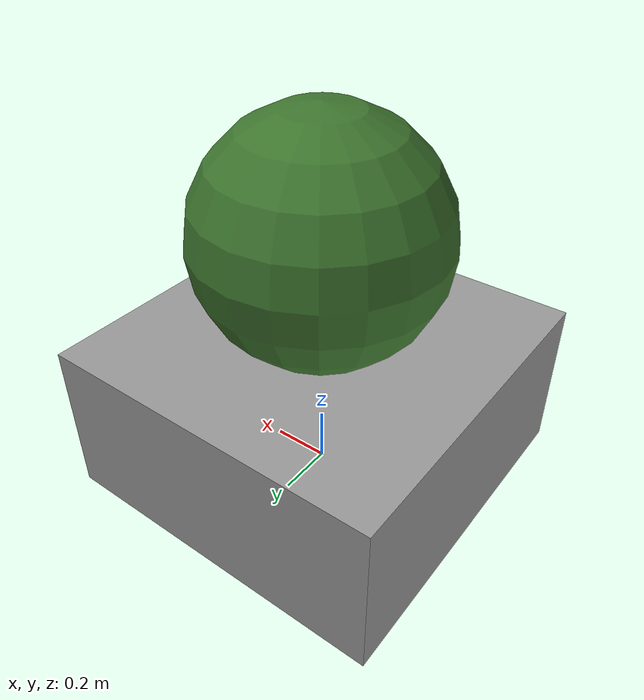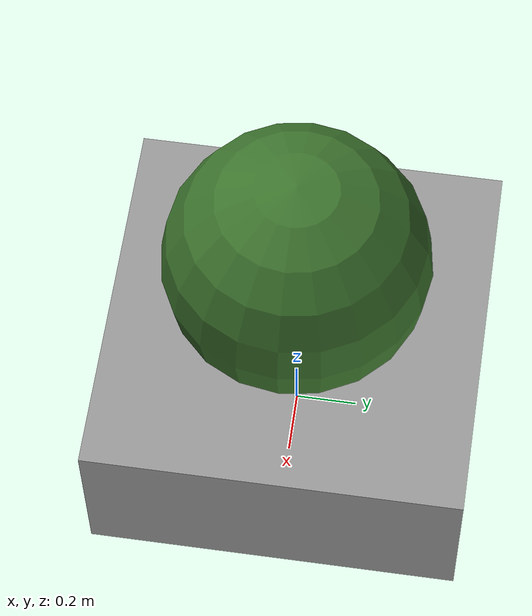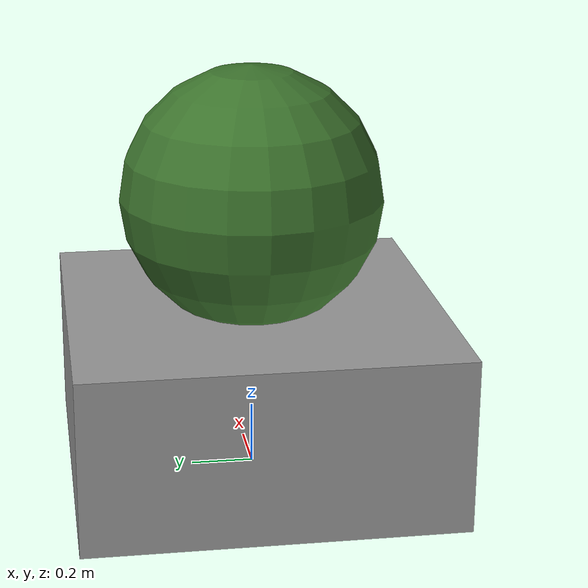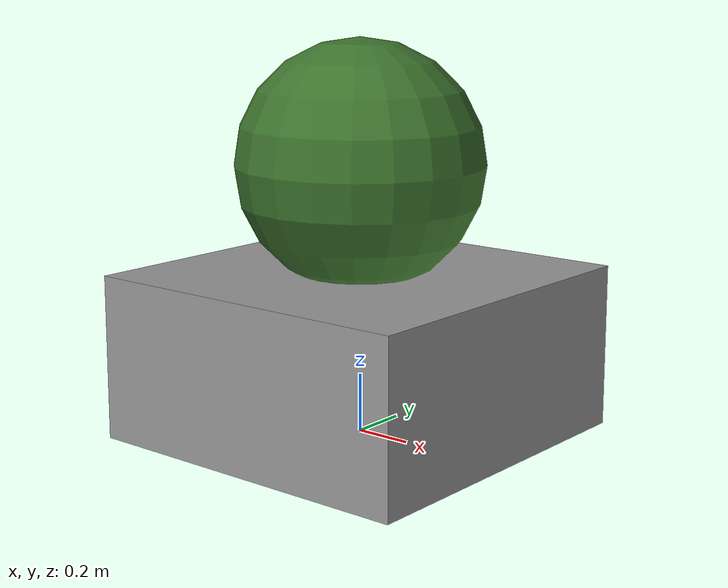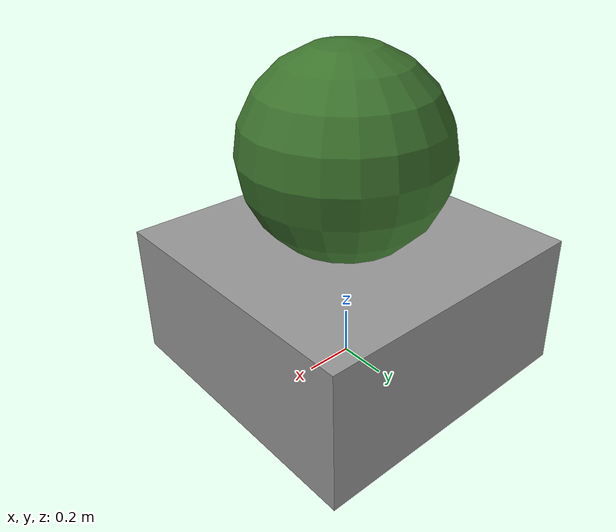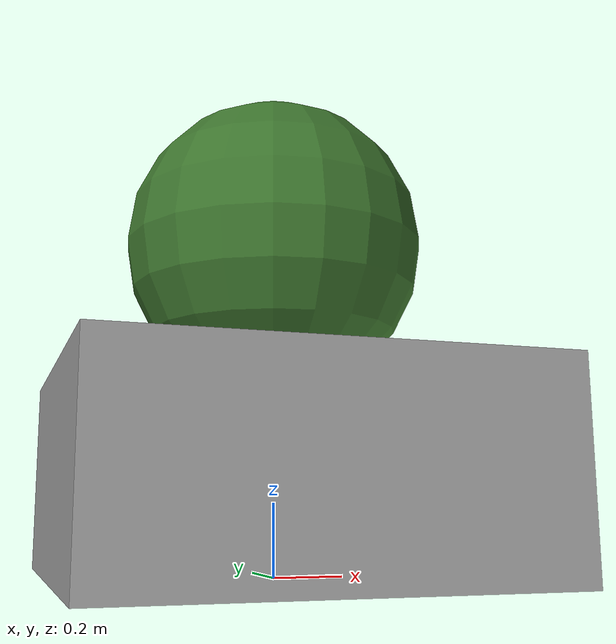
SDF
<?xml version="1.0" ?>
<sdf version="1.6">
  <model name="vln_planter_box">
    <static>true</static>
    <link name="link">
      <collision name="collision">
        <pose>0 0 0.28 0 0 0</pose>
        <geometry>
          <box>
            <size>1.2 1.2 0.56</size>
          </box>
        </geometry>
      </collision>
      <visual name="concrete">
        <pose>0 0 0.28 0 0 0</pose>
        <geometry>
          <box>
            <size>1.2 1.2 0.56</size>
          </box>
        </geometry>
        <material>
          <ambient>0.48 0.48 0.48 1</ambient>
          <diffuse>0.60 0.60 0.60 1</diffuse>
        </material>
      </visual>
      <visual name="soil">
        <pose>0 0 0.49 0 0 0</pose>
        <geometry>
          <box>
            <size>0.95 0.95 0.1</size>
          </box>
        </geometry>
        <material>
          <ambient>0.20 0.13 0.08 1</ambient>
          <diffuse>0.28 0.18 0.10 1</diffuse>
        </material>
      </visual>
      <visual name="shrub">
        <pose>0 0 0.92 0 0 0</pose>
        <geometry>
          <sphere>
            <radius>0.42</radius>
          </sphere>
        </geometry>
        <material>
          <ambient>0.18 0.32 0.14 1</ambient>
          <diffuse>0.24 0.46 0.18 1</diffuse>
        </material>
      </visual>
    </link>
  </model>
</sdf>
